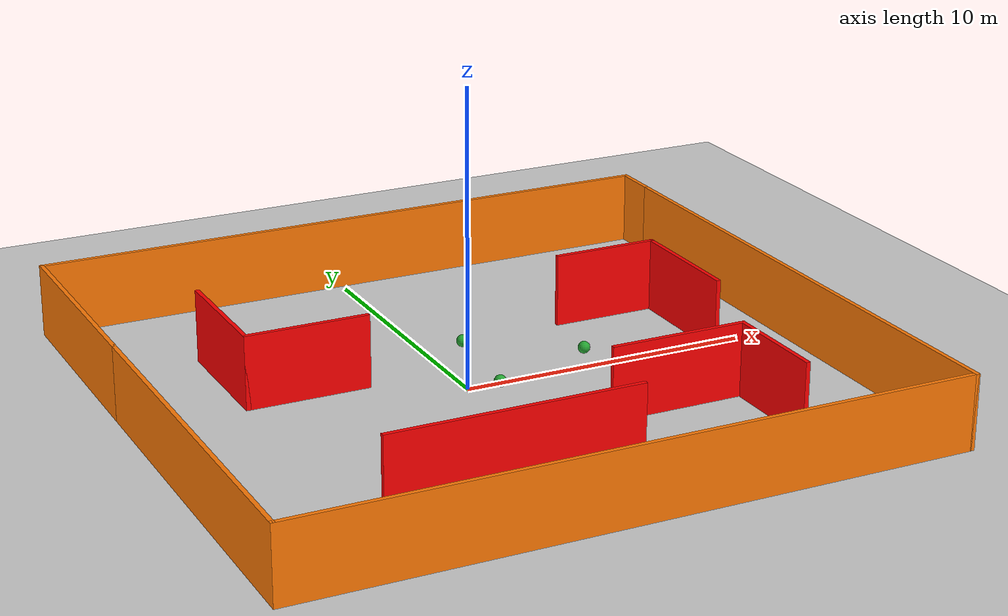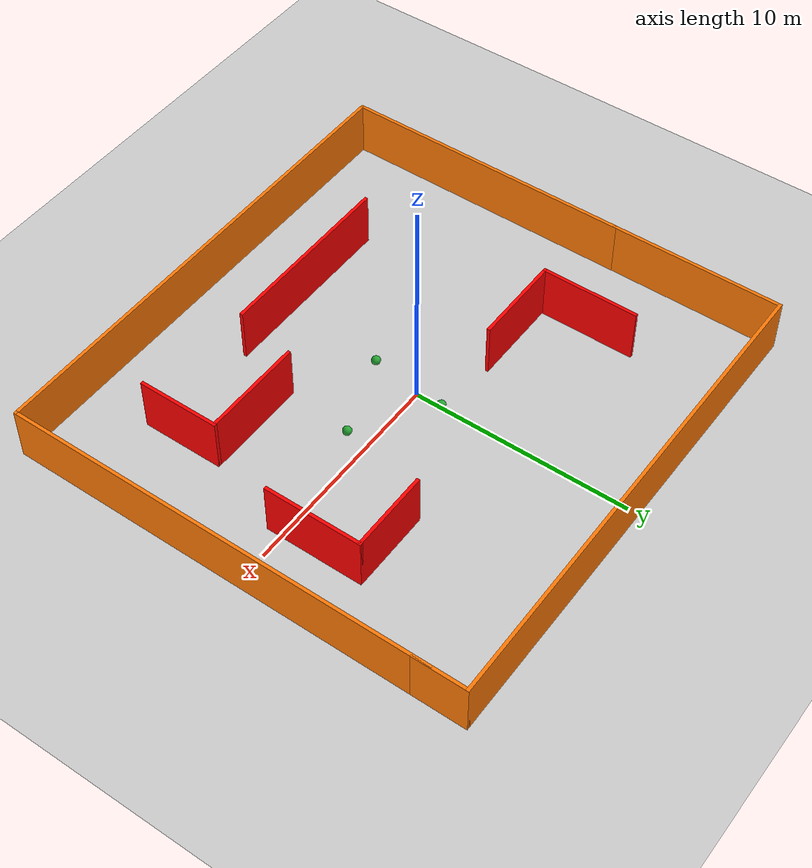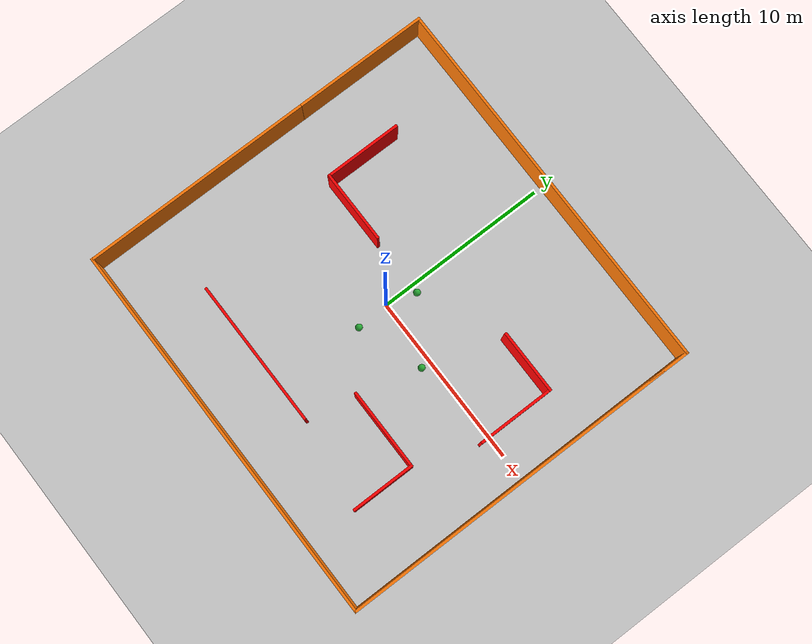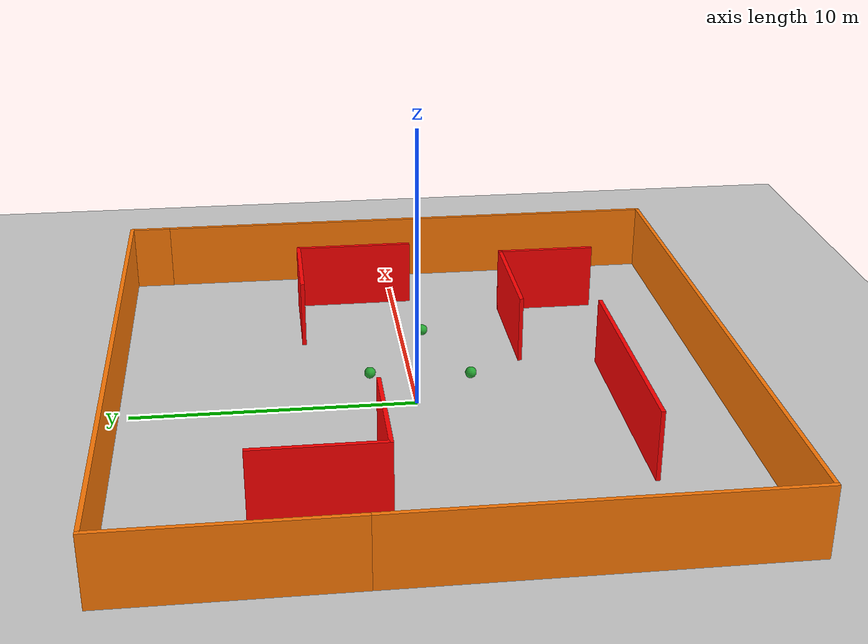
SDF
<sdf version="1.7">
 <world name="default">
  <light name="sun" type="directional">
   <pose>0 0 10 0 -0 0</pose>
   <diffuse>0.8 0.8 0.8 1</diffuse>
   <specular>0.2 0.2 0.2 1</specular>
   <attenuation>
    <range>1000</range>
    <constant>0.9</constant>
    <linear>0.01</linear>
    <quadratic>0.001</quadratic>
   </attenuation>
   <direction>-0.5 0.1 -0.9</direction>
   <spot><inner_angle>0</inner_angle><outer_angle>0</outer_angle><falloff>0</falloff></spot>
  </light>
  <model name="ground_plane">
   <static>1</static>
   <link name="link">
    <collision name="collision">
     <geometry><plane><normal>0 0 1</normal><size>100 100</size></plane></geometry>
     <surface>
      <contact><collide_bitmask>65535</collide_bitmask></contact>
      <friction><ode><mu>100</mu><mu2>50</mu2></ode></friction>
     </surface>
    </collision>
    <visual name="visual">
     <cast_shadows>0</cast_shadows>
     <geometry><plane><normal>0 0 1</normal><size>100 100</size></plane></geometry>
     <material>
      <script><uri>file://media/materials/scripts/gazebo.material</uri><name>Gazebo/Grey</name></script>
     </material>
    </visual>
   </link>
  </model>
  <gravity>0 0 -9.8</gravity>
  <magnetic_field>6e-06 2.3e-05 -4.2e-05</magnetic_field>
  <atmosphere type="adiabatic"/>
  <physics type="ode">
   <max_step_size>0.001</max_step_size>
   <real_time_factor>1</real_time_factor>
   <real_time_update_rate>1000</real_time_update_rate>
  </physics>
  <scene><ambient>0.4 0.4 0.4 1</ambient><background>0.7 0.7 0.7 1</background><shadows>1</shadows></scene>
  <spherical_coordinates>
   <surface_model>EARTH_WGS84</surface_model>
   <latitude_deg>0</latitude_deg>
   <longitude_deg>0</longitude_deg>
   <elevation>0</elevation>
   <heading_deg>0</heading_deg>
  </spherical_coordinates>
  <model name="environment">
   <pose>0.397623 -0.161518 0 0 -0 0</pose>
   <link name="Wall_55">
    <collision name="Wall_55_Collision">
     <geometry><box><size>13.5 0.15 2.5</size></box></geometry>
     <pose>0 0 1.25 0 -0 0</pose>
    </collision>
    <visual name="Wall_55_Visual">
     <pose>0 0 1.25 0 -0 0</pose>
     <geometry><box><size>13.5 0.15 2.5</size></box></geometry>
     <material>
      <script><uri>file://media/materials/scripts/gazebo.material</uri><name>Gazebo/Grey</name></script>
      <ambient>0.996078 0.47451 0.0196078 1</ambient>
     </material>
     <meta><layer>0</layer></meta>
    </visual>
    <pose>-11.175 -3.925 0 0 -0 -1.5708</pose>
   </link>
   <link name="Wall_56">
    <collision name="Wall_56_Collision">
     <geometry><box><size>22.5 0.15 2.5</size></box></geometry>
     <pose>0 0 1.25 0 -0 0</pose>
    </collision>
    <visual name="Wall_56_Visual">
     <pose>0 0 1.25 0 -0 0</pose>
     <geometry><box><size>22.5 0.15 2.5</size></box></geometry>
     <material>
      <script><uri>file://media/materials/scripts/gazebo.material</uri><name>Gazebo/Grey</name></script>
      <ambient>0.996078 0.47451 0.0196078 1</ambient>
     </material>
     <meta><layer>0</layer></meta>
    </visual>
    <pose>0 -10.6 0 0 -0 0</pose>
   </link>
   <link name="Wall_57">
    <collision name="Wall_57_Collision">
     <geometry><box><size>19.75 0.15 2.5</size></box></geometry>
     <pose>0 0 1.25 0 -0 0</pose>
    </collision>
    <visual name="Wall_57_Visual">
     <pose>0 0 1.25 0 -0 0</pose>
     <geometry><box><size>19.75 0.15 2.5</size></box></geometry>
     <material>
      <script><uri>file://media/materials/scripts/gazebo.material</uri><name>Gazebo/Grey</name></script>
      <ambient>0.996078 0.47451 0.0196078 1</ambient>
     </material>
     <meta><layer>0</layer></meta>
    </visual>
    <pose>11.175 -0.8 0 0 -0 1.5708</pose>
   </link>
   <link name="Wall_61">
    <collision name="Wall_61_Collision">
     <geometry><box><size>8 0.15 2.5</size></box></geometry>
     <pose>0 0 1.25 0 -0 0</pose>
    </collision>
    <visual name="Wall_61_Visual">
     <pose>0 0 1.25 0 -0 0</pose>
     <geometry><box><size>8 0.15 2.5</size></box></geometry>
     <material>
      <script><uri>file://media/materials/scripts/gazebo.material</uri><name>Gazebo/Grey</name></script>
      <ambient>0.996078 0.47451 0.0196078 1</ambient>
     </material>
     <meta><layer>0</layer></meta>
    </visual>
    <pose>-11.175 6.675 0 0 -0 1.5708</pose>
   </link>
   <link name="Wall_62">
    <collision name="Wall_62_Collision">
     <geometry><box><size>22.5 0.15 2.5</size></box></geometry>
     <pose>0 0 1.25 0 -0 0</pose>
    </collision>
    <visual name="Wall_62_Visual">
     <pose>0 0 1.25 0 -0 0</pose>
     <geometry><box><size>22.5 0.15 2.5</size></box></geometry>
     <material>
      <script><uri>file://media/materials/scripts/gazebo.material</uri><name>Gazebo/Grey</name></script>
      <ambient>0.996078 0.47451 0.0196078 1</ambient>
     </material>
     <meta><layer>0</layer></meta>
    </visual>
    <pose>0 10.6 0 0 -0 0</pose>
   </link>
   <link name="Wall_63">
    <collision name="Wall_63_Collision">
     <geometry><box><size>2.5 0.15 2.5</size></box></geometry>
     <pose>0 0 1.25 0 -0 0</pose>
    </collision>
    <visual name="Wall_63_Visual">
     <pose>0 0 1.25 0 -0 0</pose>
     <geometry><box><size>2.5 0.15 2.5</size></box></geometry>
     <material>
      <script><uri>file://media/materials/scripts/gazebo.material</uri><name>Gazebo/Grey</name></script>
      <ambient>0.996078 0.47451 0.0196078 1</ambient>
     </material>
     <meta><layer>0</layer></meta>
    </visual>
    <pose>11.175 9.425 0 0 -0 -1.5708</pose>
   </link>
   <link name="Wall_65">
    <collision name="Wall_65_Collision">
     <geometry><box><size>4.5 0.15 2.5</size></box></geometry>
     <pose>0 0 1.25 0 -0 0</pose>
    </collision>
    <visual name="Wall_65_Visual">
     <pose>0 0 1.25 0 -0 0</pose>
     <geometry><box><size>4.5 0.15 2.5</size></box></geometry>
     <material>
      <script><uri>file://media/materials/scripts/gazebo.material</uri><name>Gazebo/Grey</name></script>
      <ambient>1.0 0.0 0.0 1</ambient>
     </material>
     <meta><layer>0</layer></meta>
    </visual>
    <pose>-7.28296 3.91589 0 0 -0 -1.5708</pose>
   </link>
   <link name="Wall_66">
    <collision name="Wall_66_Collision">
     <geometry><box><size>4.25 0.15 2.5</size></box></geometry>
     <pose>0 0 1.25 0 -0 0</pose>
    </collision>
    <visual name="Wall_66_Visual">
     <pose>0 0 1.25 0 -0 0</pose>
     <geometry><box><size>4.25 0.15 2.5</size></box></geometry>
     <material>
      <script><uri>file://media/materials/scripts/gazebo.material</uri><name>Gazebo/Grey</name></script>
      <ambient>1.0 0.0 0.0 1</ambient>
     </material>
     <meta><layer>0</layer></meta>
    </visual>
    <pose>-5.23296 1.74089 0 0 -0 0</pose>
   </link>
   <link name="Wall_68">
    <collision name="Wall_68_Collision">
     <geometry><box><size>3.75 0.15 2.5</size></box></geometry>
     <pose>0 0 1.25 0 -0 0</pose>
    </collision>
    <visual name="Wall_68_Visual">
     <pose>0 0 1.25 0 -0 0</pose>
     <geometry><box><size>3.75 0.15 2.5</size></box></geometry>
     <material>
      <script><uri>file://media/materials/scripts/gazebo.material</uri><name>Gazebo/Grey</name></script>
      <ambient>1.0 0.0 0.0 1</ambient>
     </material>
     <meta><layer>0</layer></meta>
    </visual>
    <pose>6.6086 3.89729 0 0 -0 0</pose>
   </link>
   <link name="Wall_69">
    <collision name="Wall_69_Collision">
     <geometry><box><size>4.5 0.15 2.5</size></box></geometry>
     <pose>0 0 1.25 0 -0 0</pose>
    </collision>
    <visual name="Wall_69_Visual">
     <pose>0 0 1.25 0 -0 0</pose>
     <geometry><box><size>4.5 0.15 2.5</size></box></geometry>
     <material>
      <script><uri>file://media/materials/scripts/gazebo.material</uri><name>Gazebo/Grey</name></script>
      <ambient>1.0 0.0 0.0 1</ambient>
     </material>
     <meta><layer>0</layer></meta>
    </visual>
    <pose>8.4086 1.72229 0 0 -0 -1.5708</pose>
   </link>
   <link name="Wall_71">
    <collision name="Wall_71_Collision">
     <geometry><box><size>8.5 0.15 2.5</size></box></geometry>
     <pose>0 0 1.25 0 -0 0</pose>
    </collision>
    <visual name="Wall_71_Visual">
     <pose>0 0 1.25 0 -0 0</pose>
     <geometry><box><size>8.5 0.15 2.5</size></box></geometry>
     <material>
      <script><uri>file://media/materials/scripts/gazebo.material</uri><name>Gazebo/Grey</name></script>
      <ambient>1.0 0.0 0.0 1</ambient>
     </material>
     <meta><layer>0</layer></meta>
    </visual>
    <pose>-2.19842 -6.85672 0 0 -0 0</pose>
   </link>
   <link name="Wall_73">
    <collision name="Wall_73_Collision">
     <geometry><box><size>4.75 0.15 2.5</size></box></geometry>
     <pose>0 0 1.25 0 -0 0</pose>
    </collision>
    <visual name="Wall_73_Visual">
     <pose>0 0 1.25 0 -0 0</pose>
     <geometry><box><size>4.75 0.15 2.5</size></box></geometry>
     <material>
      <script><uri>file://media/materials/scripts/gazebo.material</uri><name>Gazebo/Grey</name></script>
      <ambient>1.0 0.0 0.0 1</ambient>
     </material>
     <meta><layer>0</layer></meta>
    </visual>
    <pose>4.8615 -4.02108 0 0 -0 0</pose>
   </link>
   <link name="Wall_74">
    <collision name="Wall_74_Collision">
     <geometry><box><size>3.75 0.15 2.5</size></box></geometry>
     <pose>0 0 1.25 0 -0 0</pose>
    </collision>
    <visual name="Wall_74_Visual">
     <pose>0 0 1.25 0 -0 0</pose>
     <geometry><box><size>3.75 0.15 2.5</size></box></geometry>
     <material>
      <script><uri>file://media/materials/scripts/gazebo.material</uri><name>Gazebo/Grey</name></script>
      <ambient>1.0 0.0 0.0 1</ambient>
     </material>
     <meta><layer>0</layer></meta>
    </visual>
    <pose>7.1615 -5.82108 0 0 -0 -1.5708</pose>
   </link>
   <static>1</static>
  </model>
  <model name="green_ball_1">
   <link name="link">
    <inertial>
     <mass>1</mass>
     <inertia><ixx>0.1</ixx><ixy>0</ixy><ixz>0</ixz><iyy>0.1</iyy><iyz>0</iyz><izz>0.1</izz></inertia>
    </inertial>
    <gravity>0</gravity>
    <visual name="visual">
     <geometry><sphere><radius>0.2</radius></sphere></geometry>
     <material>
      <script><name>Gazebo/Green</name><uri>file://media/materials/scripts/gazebo.material</uri></script>
      <shader type="pixel"><normal_map>__default__</normal_map></shader>
      <ambient>0 1 0 1</ambient>
      <diffuse>0 1 0 1</diffuse>
      <specular>0.1 0.1 0.1 1</specular>
      <emissive>0 0 0 1</emissive>
     </material>
     <pose>0 0 1 0 -0 0</pose>
    </visual>
    <collision name="collision">
     <pose>0 0 1 0 -0 0</pose>
     <geometry><sphere><radius>0.2</radius></sphere></geometry>
     <surface>
      <friction>
       <ode><mu>1</mu><mu2>1</mu2><fdir1>0 0 0</fdir1><slip1>0</slip1><slip2>0</slip2></ode>
       <torsional>
        <coefficient>1</coefficient>
        <patch_radius>0</patch_radius>
        <surface_radius>0</surface_radius>
        <use_patch_radius>1</use_patch_radius>
        <ode><slip>0</slip></ode>
       </torsional>
      </friction>
      <bounce><restitution_coefficient>0</restitution_coefficient><threshold>1e+06</threshold></bounce>
      <contact>
       <collide_without_contact>0</collide_without_contact>
       <collide_without_contact_bitmask>1</collide_without_contact_bitmask>
       <collide_bitmask>1</collide_bitmask>
       <ode>
        <soft_cfm>0</soft_cfm>
        <soft_erp>0.2</soft_erp>
        <kp>1e+13</kp>
        <kd>1</kd>
        <max_vel>0.01</max_vel>
        <min_depth>0</min_depth>
       </ode>
       <bullet>
        <split_impulse>1</split_impulse>
        <split_impulse_penetration_threshold>-0.01</split_impulse_penetration_threshold>
        <soft_cfm>0</soft_cfm>
        <soft_erp>0.2</soft_erp>
        <kp>1e+13</kp>
        <kd>1</kd>
       </bullet>
      </contact>
     </surface>
    </collision>
   </link>
   <static>0</static>
   <pose>0.187791 -1.91898 0 0 -0 0</pose>
  </model>
  <model name="green_ball_1_0">
   <link name="link">
    <inertial>
     <mass>1</mass>
     <inertia><ixx>0.1</ixx><ixy>0</ixy><ixz>0</ixz><iyy>0.1</iyy><iyz>0</iyz><izz>0.1</izz></inertia>
    </inertial>
    <gravity>0</gravity>
    <visual name="visual">
     <geometry><sphere><radius>0.2</radius></sphere></geometry>
     <material>
      <script><name>Gazebo/Green</name><uri>file://media/materials/scripts/gazebo.material</uri></script>
      <shader type="pixel"><normal_map>__default__</normal_map></shader>
      <ambient>0 1 0 1</ambient>
      <diffuse>0 1 0 1</diffuse>
      <specular>0.1 0.1 0.1 1</specular>
      <emissive>0 0 0 1</emissive>
     </material>
     <pose>0 0 1 0 -0 0</pose>
    </visual>
    <collision name="collision">
     <pose>0 0 1 0 -0 0</pose>
     <geometry><sphere><radius>0.2</radius></sphere></geometry>
     <surface>
      <friction>
       <ode><mu>1</mu><mu2>1</mu2><fdir1>0 0 0</fdir1><slip1>0</slip1><slip2>0</slip2></ode>
       <torsional>
        <coefficient>1</coefficient>
        <patch_radius>0</patch_radius>
        <surface_radius>0</surface_radius>
        <use_patch_radius>1</use_patch_radius>
        <ode><slip>0</slip></ode>
       </torsional>
      </friction>
      <bounce><restitution_coefficient>0</restitution_coefficient><threshold>1e+06</threshold></bounce>
      <contact>
       <collide_without_contact>0</collide_without_contact>
       <collide_without_contact_bitmask>1</collide_without_contact_bitmask>
       <collide_bitmask>1</collide_bitmask>
       <ode>
        <soft_cfm>0</soft_cfm>
        <soft_erp>0.2</soft_erp>
        <kp>1e+13</kp>
        <kd>1</kd>
        <max_vel>0.01</max_vel>
        <min_depth>0</min_depth>
       </ode>
       <bullet>
        <split_impulse>1</split_impulse>
        <split_impulse_penetration_threshold>-0.01</split_impulse_penetration_threshold>
        <soft_cfm>0</soft_cfm>
        <soft_erp>0.2</soft_erp>
        <kp>1e+13</kp>
        <kd>1</kd>
       </bullet>
      </contact>
     </surface>
    </collision>
   </link>
   <static>0</static>
   <pose>0.569108 1.60382 0 0 -0 0</pose>
  </model>
  <model name="green_ball_1_1">
   <link name="link">
    <inertial>
     <mass>1</mass>
     <inertia><ixx>0.1</ixx><ixy>0</ixy><ixz>0</ixz><iyy>0.1</iyy><iyz>0</iyz><izz>0.1</izz></inertia>
    </inertial>
    <gravity>0</gravity>
    <visual name="visual">
     <geometry><sphere><radius>0.2</radius></sphere></geometry>
     <material>
      <script><name>Gazebo/Green</name><uri>file://media/materials/scripts/gazebo.material</uri></script>
      <shader type="pixel"><normal_map>__default__</normal_map></shader>
      <ambient>0 1 0 1</ambient>
      <diffuse>0 1 0 1</diffuse>
      <specular>0.1 0.1 0.1 1</specular>
      <emissive>0 0 0 1</emissive>
     </material>
     <pose>0 0 1 0 -0 0</pose>
    </visual>
    <collision name="collision">
     <pose>0 0 1 0 -0 0</pose>
     <geometry><sphere><radius>0.2</radius></sphere></geometry>
     <surface>
      <friction>
       <ode><mu>1</mu><mu2>1</mu2><fdir1>0 0 0</fdir1><slip1>0</slip1><slip2>0</slip2></ode>
       <torsional>
        <coefficient>1</coefficient>
        <patch_radius>0</patch_radius>
        <surface_radius>0</surface_radius>
        <use_patch_radius>1</use_patch_radius>
        <ode><slip>0</slip></ode>
       </torsional>
      </friction>
      <bounce><restitution_coefficient>0</restitution_coefficient><threshold>1e+06</threshold></bounce>
      <contact>
       <collide_without_contact>0</collide_without_contact>
       <collide_without_contact_bitmask>1</collide_without_contact_bitmask>
       <collide_bitmask>1</collide_bitmask>
       <ode>
        <soft_cfm>0</soft_cfm>
        <soft_erp>0.2</soft_erp>
        <kp>1e+13</kp>
        <kd>1</kd>
        <max_vel>0.01</max_vel>
        <min_depth>0</min_depth>
       </ode>
       <bullet>
        <split_impulse>1</split_impulse>
        <split_impulse_penetration_threshold>-0.01</split_impulse_penetration_threshold>
        <soft_cfm>0</soft_cfm>
        <soft_erp>0.2</soft_erp>
        <kp>1e+13</kp>
        <kd>1</kd>
       </bullet>
      </contact>
     </surface>
    </collision>
   </link>
   <static>0</static>
   <pose>3.84556 -0.623089 0 0 -0 0</pose>
  </model>
 </world>
</sdf>
